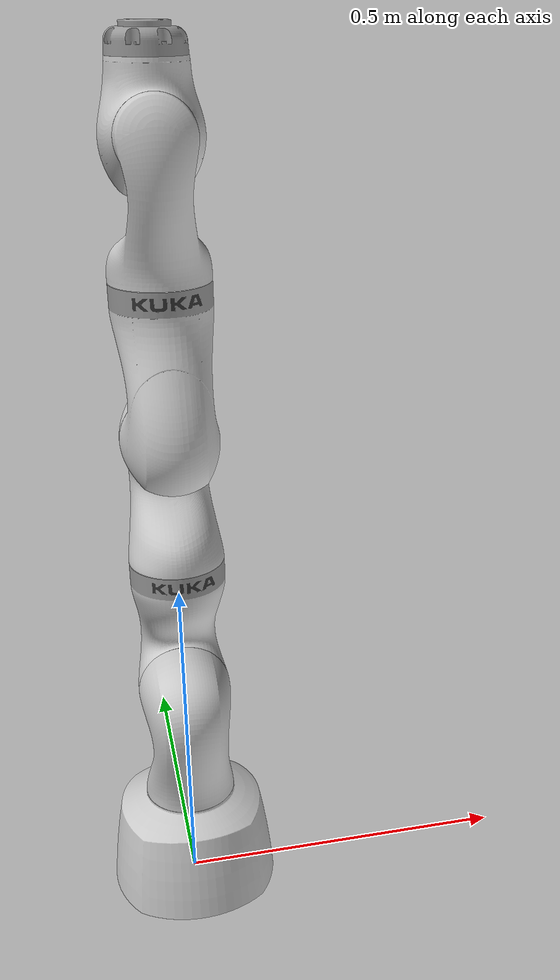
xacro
<?xml version="1.0"?>

<!-- top level -->
<robot name="med7" xmlns:xacro="http://www.ros.org/wiki/xacro">

    <!-- include the med macro and controller -->
    <xacro:include filename="$(find lbr_description)/urdf/med7/med7.urdf.xacro" />
    <xacro:include filename="$(find lbr_description)/gazebo/lbr_gazebo.xacro" />
    <xacro:include filename="$(find lbr_description)/ros2_control/lbr_system_interface.xacro" />

    <!-- arguments -->
    <xacro:arg name="robot_name" default="lbr" />
    <xacro:arg name="mode" default="true" />
    <xacro:arg
        name="joint_limits_path"
        default="$(find lbr_description)/urdf/med7/joint_limits.yaml" />
    <xacro:arg
        name="system_config_path"
        default="$(find lbr_description)/ros2_control/lbr_system_config.yaml" />
    <xacro:arg
        name="initial_joint_positions_path"
        default="$(find lbr_description)/ros2_control/initial_joint_positions.yaml" />

    <!-- KDL requires a link without inertia / Gazebo requires a connection to world link or robot
    will tipple https://github.com/lbr-stack/lbr_fri_ros2_stack/issues/230 -->
    <link name="world" />

    <joint name="$(arg robot_name)_world_joint" type="fixed">
        <parent link="world" />
        <child link="$(arg robot_name)_link_0" />
    </joint>

    <!-- macros for gazebo / mock / hardware -->
    <xacro:lbr_gazebo robot_name="$(arg robot_name)" />
    <xacro:lbr_system_interface
        robot_name="$(arg robot_name)"
        mode="$(arg mode)"
        system_config_path="$(arg system_config_path)"
        initial_joint_positions_path="$(arg initial_joint_positions_path)" />

    <!-- med description -->
    <xacro:med7
        robot_name="$(arg robot_name)"
        joint_limits_path="$(arg joint_limits_path)" />
</robot>

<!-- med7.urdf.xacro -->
<robot xmlns:xacro="http://www.ros.org/wiki/xacro">
    <!-- robot as extracted via https://github.com/syuntoku14/fusion2urdf -->
    <xacro:macro name="med7"
        params="robot_name:=^|lbr joint_limits_path:=^|'$(find lbr_description)/urdf/med7/joint_limits.yaml'">

        <!-- load joint limits via yaml -->
        <xacro:property name="joint_limits" value="${xacro.load_yaml(joint_limits_path)}" />

        <!-- constants -->
        <xacro:property name="PI" value="3.1415926535897931" />
        <xacro:property name="joint_damping" value="10.0" />
        <xacro:property name="joint_friction" value="0.1" />

        <!-- links and joints -->
        <link name="${robot_name}_link_0">
            <inertial>
                <origin rpy="0 0 0" xyz="-0.001896 0.0 0.076263" />
                <mass value="7.143112" />
                <inertia ixx="0.038694" ixy="0.0" ixz="-0.000686" iyy="0.039461" iyz="0.0"
                    izz="0.054387" />
            </inertial>
            <visual>
                <origin rpy="0 0 0" xyz="0 0 0" />
                <geometry>
                    <mesh filename="package://lbr_description/meshes/med7/visual/link_0.dae" />
                </geometry>
            </visual>
            <collision>
                <origin rpy="0 0 0" xyz="0 0 0" />
                <geometry>
                    <mesh filename="package://lbr_description/meshes/med7/collision/link_0.stl" />
                </geometry>
            </collision>
        </link>

        <joint name="${robot_name}_A1" type="revolute">
            <origin rpy="0 0 0" xyz="0.0 0.0 0.1475" />
            <parent link="${robot_name}_link_0" />
            <child link="${robot_name}_link_1" />
            <axis xyz="0.0 0.0 1.0" />
            <limit
                effort="${joint_limits['A1']['effort']}"
                lower="${joint_limits['A1']['lower'] * PI / 180}"
                upper="${joint_limits['A1']['upper'] * PI / 180}"
                velocity="${joint_limits['A1']['velocity'] * PI / 180}" />
            <safety_controller
                soft_lower_limit="${joint_limits['A1']['lower'] * PI / 180}"
                soft_upper_limit="${joint_limits['A1']['upper'] * PI / 180}"
                k_position="${joint_limits['A1']['velocity'] / joint_limits['A1']['safety_position_margin']}"
                k_velocity="${joint_limits['A1']['k_velocity']}" />
            <dynamics damping="${joint_damping}" friction="${joint_friction}" />
        </joint>

        <link name="${robot_name}_link_1">
            <inertial>
                <origin rpy="0 0 0" xyz="0.0 -0.034819  0.123299" />
                <mass value="3.271499" />
                <inertia ixx="0.020611" ixy="0.0" ixz="0.0" iyy="0.019667" iyz="0.00366"
                    izz="0.00729" />
            </inertial>
            <visual>
                <origin rpy="0 0 0" xyz="0.0 0.0 -0.1475" />
                <geometry>
                    <mesh filename="package://lbr_description/meshes/med7/visual/link_1.dae" />
                </geometry>
            </visual>
            <collision>
                <origin rpy="0 0 0" xyz="0.0 0.0 -0.1475" />
                <geometry>
                    <mesh filename="package://lbr_description/meshes/med7/collision/link_1.stl" />
                </geometry>
            </collision>
        </link>

        <joint name="${robot_name}_A2" type="revolute">
            <origin rpy="0 0 0" xyz="0.0 -0.0105 0.1925" />
            <parent link="${robot_name}_link_1" />
            <child link="${robot_name}_link_2" />
            <axis xyz="0.0 1.0 0.0" />
            <limit
                effort="${joint_limits['A2']['effort']}"
                lower="${joint_limits['A2']['lower'] * PI / 180}"
                upper="${joint_limits['A2']['upper'] * PI / 180}"
                velocity="${joint_limits['A2']['velocity'] * PI / 180}" />
            <safety_controller
                soft_lower_limit="${joint_limits['A2']['lower'] * PI / 180}"
                soft_upper_limit="${joint_limits['A2']['upper'] * PI / 180}"
                k_position="${joint_limits['A2']['velocity'] / joint_limits['A2']['safety_position_margin']}"
                k_velocity="${joint_limits['A2']['k_velocity']}" />
            <dynamics damping="${joint_damping}" friction="${joint_friction}" />
        </joint>

        <link name="${robot_name}_link_2">
            <inertial>
                <origin rpy="0 0 0" xyz="0.0 0.039793 0.086944" />
                <mass value="3.886413" />
                <inertia ixx="0.030552" ixy="0.0" ixz="0.0" iyy="0.028995" iyz="0.005676"
                    izz="0.009317" />
            </inertial>
            <visual>
                <origin rpy="0 0 0" xyz="0.0 0.0105 -0.34" />
                <geometry>
                    <mesh filename="package://lbr_description/meshes/med7/visual/link_2.dae" />
                </geometry>
            </visual>
            <collision>
                <origin rpy="0 0 0" xyz="0.0 0.0105 -0.34" />
                <geometry>
                    <mesh filename="package://lbr_description/meshes/med7/collision/link_2.stl" />
                </geometry>
            </collision>
        </link>

        <joint name="${robot_name}_A3" type="revolute">
            <origin rpy="0 0 0" xyz="0.0 0.0105 0.2075" />
            <parent link="${robot_name}_link_2" />
            <child link="${robot_name}_link_3" />
            <axis xyz="0.0 0.0 1.0" />
            <limit
                effort="${joint_limits['A3']['effort']}"
                lower="${joint_limits['A3']['lower'] * PI / 180}"
                upper="${joint_limits['A3']['upper'] * PI / 180}"
                velocity="${joint_limits['A3']['velocity'] * PI / 180}" />
            <safety_controller
                soft_lower_limit="${joint_limits['A3']['lower'] * PI / 180}"
                soft_upper_limit="${joint_limits['A3']['upper'] * PI / 180}"
                k_position="${joint_limits['A3']['velocity'] / joint_limits['A3']['safety_position_margin']}"
                k_velocity="${joint_limits['A3']['k_velocity']}" />
            <dynamics damping="${joint_damping}" friction="${joint_friction}" />
        </joint>

        <link name="${robot_name}_link_3">
            <inertial>
                <origin rpy="0 0 0" xyz="0.0 0.034819  0.123299" />
                <mass value="3.271499" />
                <inertia ixx="0.020611" ixy="0.0" ixz="0.0" iyy="0.019667" iyz="-0.00366"
                    izz="0.00729" />
            </inertial>
            <visual>
                <origin rpy="0 0 0" xyz="0.0 0.0 -0.5475" />
                <geometry>
                    <mesh filename="package://lbr_description/meshes/med7/visual/link_3.dae" />
                </geometry>
            </visual>
            <collision>
                <origin rpy="0 0 0" xyz="0.0 0.0 -0.5475" />
                <geometry>
                    <mesh filename="package://lbr_description/meshes/med7/collision/link_3.stl" />
                </geometry>
            </collision>
        </link>

        <joint name="${robot_name}_A4" type="revolute">
            <origin rpy="0 0 0" xyz="0.0 0.0105 0.1925" />
            <parent link="${robot_name}_link_3" />
            <child link="${robot_name}_link_4" />
            <axis xyz="0.0 -1.0 0.0" />
            <limit
                effort="${joint_limits['A4']['effort']}"
                lower="${joint_limits['A4']['lower'] * PI / 180}"
                upper="${joint_limits['A4']['upper'] * PI / 180}"
                velocity="${joint_limits['A4']['velocity'] * PI / 180}" />
            <safety_controller
                soft_lower_limit="${joint_limits['A4']['lower'] * PI / 180}"
                soft_upper_limit="${joint_limits['A4']['upper'] * PI / 180}"
                k_position="${joint_limits['A4']['velocity'] / joint_limits['A4']['safety_position_margin']}"
                k_velocity="${joint_limits['A4']['k_velocity']}" />
            <dynamics damping="${joint_damping}" friction="${joint_friction}" />
        </joint>

        <link name="${robot_name}_link_4">
            <inertial>
                <origin rpy="0 0 0" xyz="0.0 -0.039793  0.086944" />
                <mass value="3.886411" />
                <inertia ixx="0.030547" ixy="0.0" ixz="0.0" iyy="0.028993" iyz="-0.005676"
                    izz="0.009313" />
            </inertial>
            <visual>
                <origin rpy="0 0 0" xyz="0.0 -0.0105 -0.74" />
                <geometry>
                    <mesh filename="package://lbr_description/meshes/med7/visual/link_4.dae" />
                </geometry>
            </visual>
            <collision>
                <origin rpy="0 0 0" xyz="0.0 -0.0105 -0.74" />
                <geometry>
                    <mesh filename="package://lbr_description/meshes/med7/collision/link_4.stl" />
                </geometry>
            </collision>
        </link>

        <joint name="${robot_name}_A5" type="revolute">
            <origin rpy="0 0 0" xyz="0.0 -0.0105 0.2075" />
            <parent link="${robot_name}_link_4" />
            <child link="${robot_name}_link_5" />
            <axis xyz="0.0 0.0 1.0" />
            <limit
                effort="${joint_limits['A5']['effort']}"
                lower="${joint_limits['A5']['lower'] * PI / 180}"
                upper="${joint_limits['A5']['upper'] * PI / 180}"
                velocity="${joint_limits['A5']['velocity'] * PI / 180}" />
            <safety_controller
                soft_lower_limit="${joint_limits['A5']['lower'] * PI / 180}"
                soft_upper_limit="${joint_limits['A5']['upper'] * PI / 180}"
                k_position="${joint_limits['A5']['velocity'] / joint_limits['A5']['safety_position_margin']}"
                k_velocity="${joint_limits['A5']['k_velocity']}" />
            <dynamics damping="${joint_damping}" friction="${joint_friction}" />
        </joint>

        <link name="${robot_name}_link_5">
            <inertial>
                <origin rpy="0 0 0" xyz="0.0 -0.029824 0.076267" />
                <mass value="1.474048" />
                <inertia ixx="0.008179" ixy="0.0" ixz="0.0" iyy="0.006879" iyz="0.002704"
                    izz="0.003709" />
            </inertial>
            <visual>
                <origin rpy="0 0 0" xyz="0.0 0.0 -0.9475" />
                <geometry>
                    <mesh filename="package://lbr_description/meshes/med7/visual/link_5.dae" />
                </geometry>
            </visual>
            <collision>
                <origin rpy="0 0 0" xyz="0.0 0.0 -0.9475" />
                <geometry>
                    <mesh filename="package://lbr_description/meshes/med7/collision/link_5.stl" />
                </geometry>
            </collision>
        </link>

        <joint name="${robot_name}_A6" type="revolute">
            <origin rpy="0 0 0" xyz="0.0 -0.0707 0.1925" />
            <parent link="${robot_name}_link_5" />
            <child link="${robot_name}_link_6" />
            <axis xyz="0.0 1.0 0.0" />
            <limit
                effort="${joint_limits['A6']['effort']}"
                lower="${joint_limits['A6']['lower'] * PI / 180}"
                upper="${joint_limits['A6']['upper'] * PI / 180}"
                velocity="${joint_limits['A6']['velocity'] * PI / 180}" />
            <safety_controller
                soft_lower_limit="${joint_limits['A6']['lower'] * PI / 180}"
                soft_upper_limit="${joint_limits['A6']['upper'] * PI / 180}"
                k_position="${joint_limits['A6']['velocity'] / joint_limits['A6']['safety_position_margin']}"
                k_velocity="${joint_limits['A6']['k_velocity']}" />
            <dynamics damping="${joint_damping}" friction="${joint_friction}" />
        </joint>

        <link name="${robot_name}_link_6">
            <inertial>
                <origin rpy="0 0 0" xyz="-1.000e-06 7.102e-02 4.953e-03" />
                <mass value="2.316911" />
                <inertia ixx="0.006813" ixy="0.0" ixz="0.0" iyy="0.006559" iyz="0.0003"
                    izz="0.004462" />
            </inertial>
            <visual>
                <origin rpy="0 0 0" xyz="0.0 0.0707 -1.14" />
                <geometry>
                    <mesh filename="package://lbr_description/meshes/med7/visual/link_6.dae" />
                </geometry>
            </visual>
            <collision>
                <origin rpy="0 0 0" xyz="0.0 0.0707 -1.14" />
                <geometry>
                    <mesh filename="package://lbr_description/meshes/med7/collision/link_6.stl" />
                </geometry>
            </collision>
        </link>

        <joint name="${robot_name}_A7" type="revolute">
            <origin rpy="0 0 0" xyz="0.0 0.0707 0.091" />
            <parent link="${robot_name}_link_6" />
            <child link="${robot_name}_link_7" />
            <axis xyz="0.0 0.0 1.0" />
            <limit
                effort="${joint_limits['A7']['effort']}"
                lower="${joint_limits['A7']['lower'] * PI / 180}"
                upper="${joint_limits['A7']['upper'] * PI / 180}"
                velocity="${joint_limits['A7']['velocity'] * PI / 180}" />
            <safety_controller
                soft_lower_limit="${joint_limits['A7']['lower'] * PI / 180}"
                soft_upper_limit="${joint_limits['A7']['upper'] * PI / 180}"
                k_position="${joint_limits['A7']['velocity'] / joint_limits['A7']['safety_position_margin']}"
                k_velocity="${joint_limits['A7']['k_velocity']}" />
            <dynamics damping="${joint_damping}" friction="${joint_friction}" />
        </joint>

        <link name="${robot_name}_link_7">
            <inertial>
                <origin rpy="0 0 0" xyz="3.0000e-06 -2.0000e-06 1.3782e-02" />
                <mass value="0.250108" />
                <inertia ixx="0.000165" ixy="0.0" ixz="0.0" iyy="0.000165" iyz="0.0" izz="0.000288" />
            </inertial>
            <visual>
                <origin rpy="0 0 0" xyz="0.0 0.0 -1.231" />
                <geometry>
                    <mesh filename="package://lbr_description/meshes/med7/visual/link_7.dae" />
                </geometry>
            </visual>
            <collision>
                <origin rpy="0 0 0" xyz="0.0 0.0 -1.231" />
                <geometry>
                    <mesh filename="package://lbr_description/meshes/med7/collision/link_7.stl" />
                </geometry>
            </collision>
        </link>

        <joint name="${robot_name}_joint_ee" type="fixed">
            <parent link="${robot_name}_link_7" />
            <child link="${robot_name}_link_ee" />
            <origin xyz="0 0 0.035" rpy="0 0 0" />
        </joint>

        <link name="${robot_name}_link_ee">
        </link>
    </xacro:macro>
</robot>
